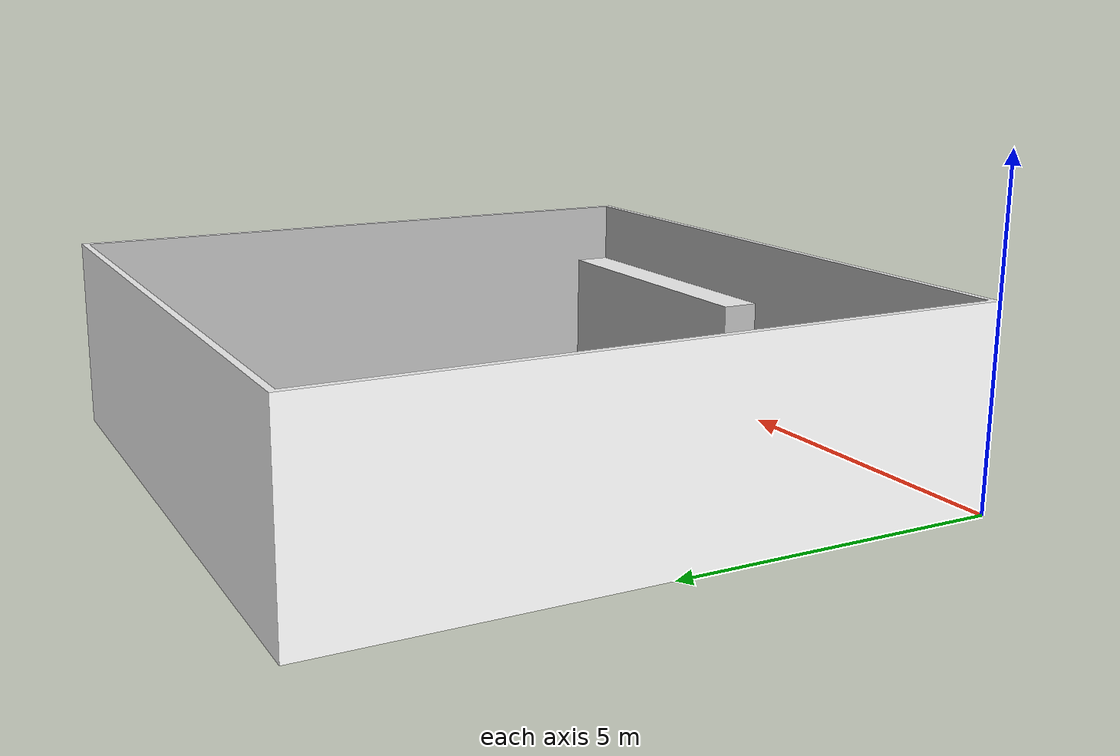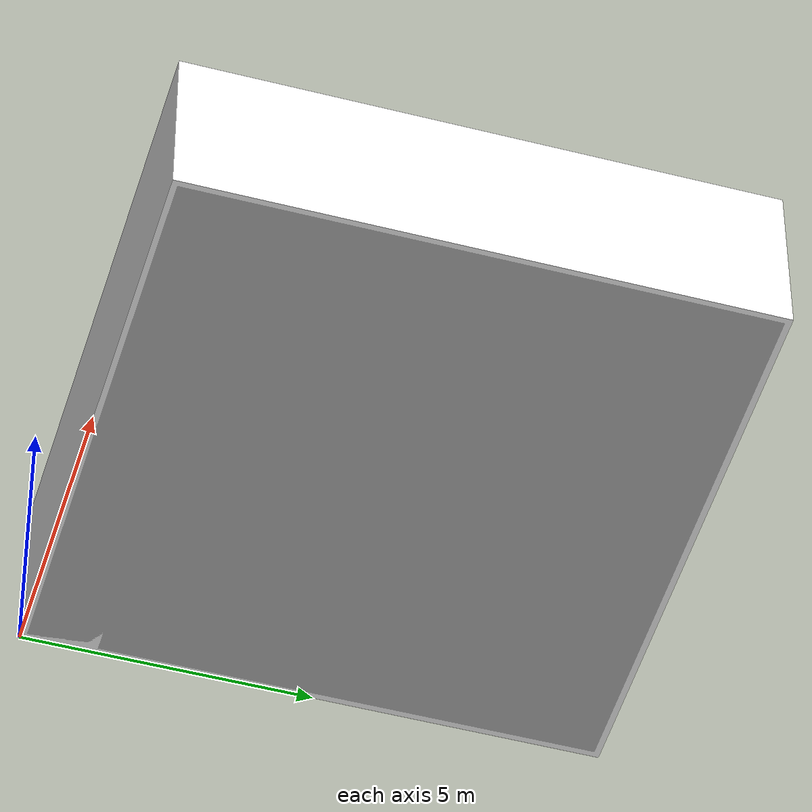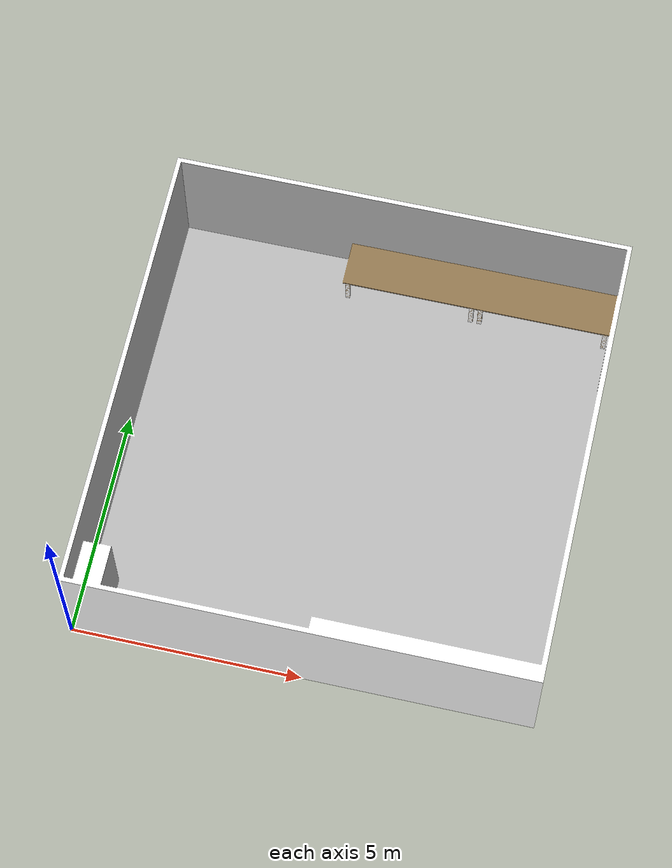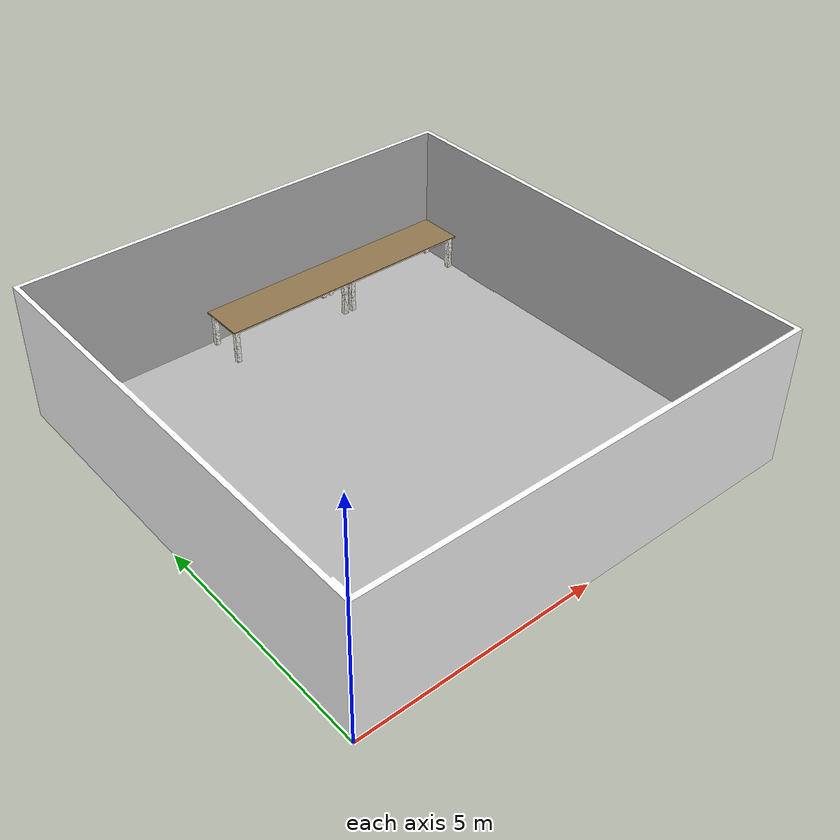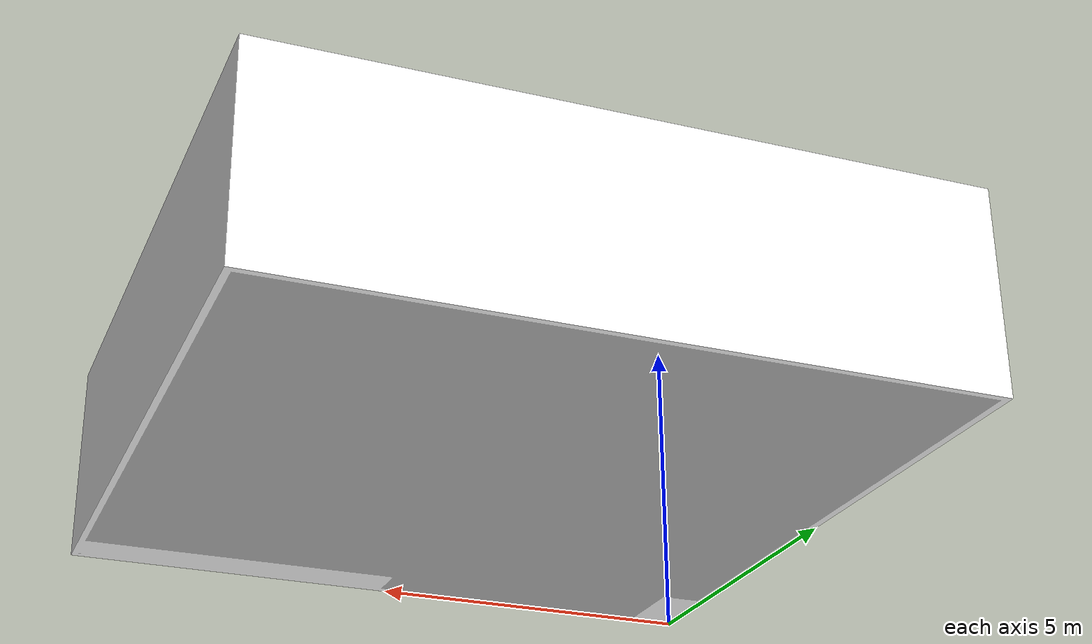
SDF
<?xml version='1.0'?>
<sdf version='1.6'>
  <model name='room_10x10'>
    <link name='link_0'>
      <visual name='visual'>
        <geometry>
          <mesh>
            <uri>model://room_10x10/10x10.dae</uri>
            <scale>1 1 1</scale>
          </mesh>
        </geometry>
        <cast_shadows>0</cast_shadows>
      </visual>
      <collision name='collision'>
        <geometry>
          <mesh>
            <uri>model://room_10x10/10x10.dae</uri>
          </mesh>
        </geometry>
      </collision>
    </link>
    <static>1</static>
  </model>
</sdf>
